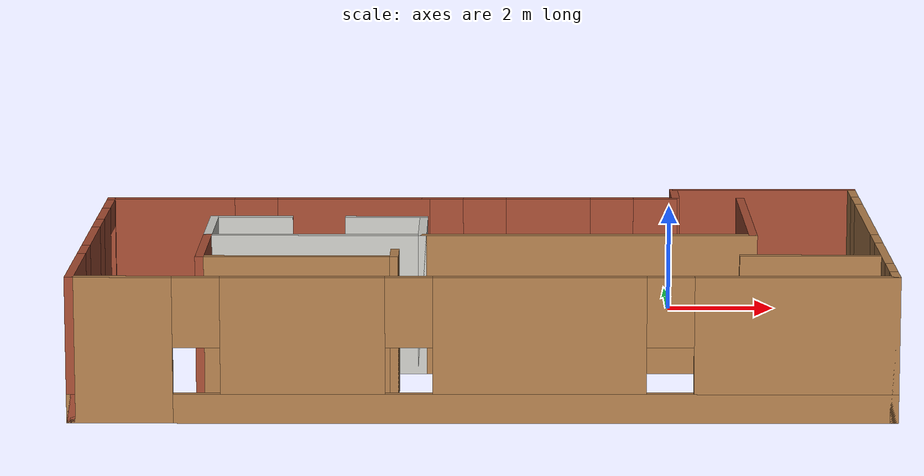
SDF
<?xml version='1.0'?>
<sdf version='1.7'>
  <model name='my_world'>
    <pose>-3.54648 -5.01067 0 0 -0 0</pose>
    <link name='Wall_1'>
      <collision name='Wall_1_Collision'>
        <geometry>
          <box>
            <size>4 0.15 2.5</size>
          </box>
        </geometry>
        <pose>0 0 1.25 0 -0 0</pose>
      </collision>
      <visual name='Wall_1_Visual'>
        <pose>0 0 1.25 0 -0 0</pose>
        <geometry>
          <box>
            <size>4 0.15 2.5</size>
          </box>
        </geometry>
        <material>
          <script>
            <uri>file://media/materials/scripts/gazebo.material</uri>
            <name>Gazebo/Bricks</name>
          </script>
          <ambient>1 1 1 1</ambient>
        </material>
        <meta>
          <layer>0</layer>
        </meta>
      </visual>
      <pose>4.775 0.989327 0 0 -0 -1.5708</pose>
    </link>
    <link name='Wall_10'>
      <collision name='Wall_10_Collision'>
        <geometry>
          <box>
            <size>3.5 0.15 2.5</size>
          </box>
        </geometry>
        <pose>0 0 1.25 0 -0 0</pose>
      </collision>
      <visual name='Wall_10_Visual'>
        <pose>0 0 1.25 0 -0 0</pose>
        <geometry>
          <box>
            <size>3.5 0.15 2.5</size>
          </box>
        </geometry>
        <material>
          <script>
            <uri>file://media/materials/scripts/gazebo.material</uri>
            <name>Gazebo/Bricks</name>
          </script>
          <ambient>1 1 1 1</ambient>
        </material>
        <meta>
          <layer>0</layer>
        </meta>
      </visual>
      <pose>5.25 3.91433 0 0 -0 3.14159</pose>
    </link>
    <link name='Wall_11'>
      <collision name='Wall_11_Collision'>
        <geometry>
          <box>
            <size>1 0.15 2.5</size>
          </box>
        </geometry>
        <pose>0 0 1.25 0 -0 0</pose>
      </collision>
      <visual name='Wall_11_Visual'>
        <pose>0 0 1.25 0 -0 0</pose>
        <geometry>
          <box>
            <size>1 0.15 2.5</size>
          </box>
        </geometry>
        <material>
          <script>
            <uri>file://media/materials/scripts/gazebo.material</uri>
            <name>Gazebo/Bricks</name>
          </script>
          <ambient>1 1 1 1</ambient>
        </material>
        <meta>
          <layer>0</layer>
        </meta>
      </visual>
      <pose>3.575 3.48933 0 0 -0 -1.5708</pose>
    </link>
    <link name='Wall_13'>
      <pose>1.225 2.91433 0 0 -0 0</pose>
      <visual name='Wall_13_Visual_0'>
        <pose>-1.98898 0 1.25 0 -0 0</pose>
        <geometry>
          <box>
            <size>0.772032 0.15 2.5</size>
          </box>
        </geometry>
        <material>
          <script>
            <uri>file://media/materials/scripts/gazebo.material</uri>
            <name>Gazebo/Bricks</name>
          </script>
          <ambient>1 1 1 1</ambient>
        </material>
        <meta>
          <layer>0</layer>
        </meta>
      </visual>
      <collision name='Wall_13_Collision_0'>
        <geometry>
          <box>
            <size>0.772032 0.15 2.5</size>
          </box>
        </geometry>
        <pose>-1.98898 0 1.25 0 -0 0</pose>
      </collision>
      <visual name='Wall_13_Visual_1'>
        <pose>0.386016 0 0.25 0 -0 0</pose>
        <geometry>
          <box>
            <size>3.97797 0.15 0.5</size>
          </box>
        </geometry>
        <material>
          <script>
            <uri>file://media/materials/scripts/gazebo.material</uri>
            <name>Gazebo/Bricks</name>
          </script>
          <ambient>1 1 1 1</ambient>
        </material>
        <meta>
          <layer>0</layer>
        </meta>
      </visual>
      <collision name='Wall_13_Collision_1'>
        <geometry>
          <box>
            <size>3.97797 0.15 0.5</size>
          </box>
        </geometry>
        <pose>0.386016 0 0.25 0 -0 0</pose>
      </collision>
      <visual name='Wall_13_Visual_2'>
        <pose>-0.022388 0 1.5 0 -0 0</pose>
        <geometry>
          <box>
            <size>1.56116 0.15 2</size>
          </box>
        </geometry>
        <material>
          <script>
            <uri>file://media/materials/scripts/gazebo.material</uri>
            <name>Gazebo/Bricks</name>
          </script>
          <ambient>1 1 1 1</ambient>
        </material>
        <meta>
          <layer>0</layer>
        </meta>
      </visual>
      <collision name='Wall_13_Collision_2'>
        <geometry>
          <box>
            <size>1.56116 0.15 2</size>
          </box>
        </geometry>
        <pose>-0.022388 0 1.5 0 -0 0</pose>
      </collision>
      <visual name='Wall_13_Visual_3'>
        <pose>1.9666 0 1.5 0 -0 0</pose>
        <geometry>
          <box>
            <size>0.816809 0.15 2</size>
          </box>
        </geometry>
        <material>
          <script>
            <uri>file://media/materials/scripts/gazebo.material</uri>
            <name>Gazebo/Bricks</name>
          </script>
          <ambient>1 1 1 1</ambient>
        </material>
        <meta>
          <layer>0</layer>
        </meta>
      </visual>
      <collision name='Wall_13_Collision_3'>
        <geometry>
          <box>
            <size>0.816809 0.15 2</size>
          </box>
        </geometry>
        <pose>1.9666 0 1.5 0 -0 0</pose>
      </collision>
      <visual name='Wall_13_Visual_4'>
        <pose>-1.20297 0 1.9 0 -0 0</pose>
        <geometry>
          <box>
            <size>0.8 0.15 1.2</size>
          </box>
        </geometry>
        <material>
          <script>
            <uri>file://media/materials/scripts/gazebo.material</uri>
            <name>Gazebo/Bricks</name>
          </script>
          <ambient>1 1 1 1</ambient>
        </material>
        <meta>
          <layer>0</layer>
        </meta>
      </visual>
      <collision name='Wall_13_Collision_4'>
        <geometry>
          <box>
            <size>0.8 0.15 1.2</size>
          </box>
        </geometry>
        <pose>-1.20297 0 1.9 0 -0 0</pose>
      </collision>
      <visual name='Wall_13_Visual_5'>
        <pose>1.15819 0 1.9 0 -0 0</pose>
        <geometry>
          <box>
            <size>0.8 0.15 1.2</size>
          </box>
        </geometry>
        <material>
          <script>
            <uri>file://media/materials/scripts/gazebo.material</uri>
            <name>Gazebo/Bricks</name>
          </script>
          <ambient>1 1 1 1</ambient>
        </material>
        <meta>
          <layer>0</layer>
        </meta>
      </visual>
      <collision name='Wall_13_Collision_5'>
        <geometry>
          <box>
            <size>0.8 0.15 1.2</size>
          </box>
        </geometry>
        <pose>1.15819 0 1.9 0 -0 0</pose>
      </collision>
    </link>
    <link name='Wall_15'>
      <collision name='Wall_15_Collision'>
        <geometry>
          <box>
            <size>1.5 0.15 2.5</size>
          </box>
        </geometry>
        <pose>0 0 1.25 0 -0 0</pose>
      </collision>
      <visual name='Wall_15_Visual'>
        <pose>0 0 1.25 0 -0 0</pose>
        <geometry>
          <box>
            <size>1.5 0.15 2.5</size>
          </box>
        </geometry>
        <material>
          <script>
            <uri>file://media/materials/scripts/gazebo.material</uri>
            <name>Gazebo/CeilingTiled</name>
          </script>
          <ambient>1 1 1 1</ambient>
        </material>
        <meta>
          <layer>0</layer>
        </meta>
      </visual>
      <pose>-1.75 0.914328 0 0 -0 3.14159</pose>
    </link>
    <link name='Wall_19'>
      <collision name='Wall_19_Collision'>
        <geometry>
          <box>
            <size>1.5 0.15 2.5</size>
          </box>
        </geometry>
        <pose>0 0 1.25 0 -0 0</pose>
      </collision>
      <visual name='Wall_19_Visual'>
        <pose>0 0 1.25 0 -0 0</pose>
        <geometry>
          <box>
            <size>1.5 0.15 2.5</size>
          </box>
        </geometry>
        <material>
          <script>
            <uri>file://media/materials/scripts/gazebo.material</uri>
            <name>Gazebo/CeilingTiled</name>
          </script>
          <ambient>1 1 1 1</ambient>
        </material>
        <meta>
          <layer>0</layer>
        </meta>
      </visual>
      <pose>-4.2 0.914328 0 0 -0 3.14159</pose>
    </link>
    <link name='Wall_2'>
      <collision name='Wall_2_Collision'>
        <geometry>
          <box>
            <size>6 0.15 2.5</size>
          </box>
        </geometry>
        <pose>0 0 1.25 0 -0 0</pose>
      </collision>
      <visual name='Wall_2_Visual'>
        <pose>0 0 1.25 0 -0 0</pose>
        <geometry>
          <box>
            <size>6 0.15 2.5</size>
          </box>
        </geometry>
        <material>
          <script>
            <uri>file://media/materials/scripts/gazebo.material</uri>
            <name>Gazebo/Wood</name>
          </script>
          <ambient>1 1 1 1</ambient>
        </material>
        <meta>
          <layer>0</layer>
        </meta>
      </visual>
      <pose>1.85 -0.935673 0 0 -0 3.14159</pose>
    </link>
    <link name='Wall_20'>
      <collision name='Wall_20_Collision'>
        <geometry>
          <box>
            <size>2 0.15 2.5</size>
          </box>
        </geometry>
        <pose>0 0 1.25 0 -0 0</pose>
      </collision>
      <visual name='Wall_20_Visual'>
        <pose>0 0 1.25 0 -0 0</pose>
        <geometry>
          <box>
            <size>2 0.15 2.5</size>
          </box>
        </geometry>
        <material>
          <script>
            <uri>file://media/materials/scripts/gazebo.material</uri>
            <name>Gazebo/CeilingTiled</name>
          </script>
          <ambient>1 1 1 1</ambient>
        </material>
        <meta>
          <layer>0</layer>
        </meta>
      </visual>
      <pose>-4.875 -0.010673 0 0 -0 -1.5708</pose>
    </link>
    <link name='Wall_21'>
      <collision name='Wall_21_Collision'>
        <geometry>
          <box>
            <size>3.95 0.15 2.5</size>
          </box>
        </geometry>
        <pose>0 0 1.25 0 -0 0</pose>
      </collision>
      <visual name='Wall_21_Visual'>
        <pose>0 0 1.25 0 -0 0</pose>
        <geometry>
          <box>
            <size>3.95 0.15 2.5</size>
          </box>
        </geometry>
        <material>
          <script>
            <uri>file://media/materials/scripts/gazebo.material</uri>
            <name>Gazebo/CeilingTiled</name>
          </script>
          <ambient>1 1 1 1</ambient>
        </material>
        <meta>
          <layer>0</layer>
        </meta>
      </visual>
      <pose>-2.975 -0.935673 0 0 -0 0</pose>
    </link>
    <link name='Wall_23'>
      <collision name='Wall_23_Collision'>
        <geometry>
          <box>
            <size>2.25 0.15 2.5</size>
          </box>
        </geometry>
        <pose>0 0 1.25 0 -0 0</pose>
      </collision>
      <visual name='Wall_23_Visual'>
        <pose>0 0 1.25 0 -0 0</pose>
        <geometry>
          <box>
            <size>2.25 0.15 2.5</size>
          </box>
        </geometry>
        <material>
          <script>
            <uri>file://media/materials/scripts/gazebo.material</uri>
            <name>Gazebo/Bricks</name>
          </script>
          <ambient>1 1 1 1</ambient>
        </material>
        <meta>
          <layer>0</layer>
        </meta>
      </visual>
      <pose>-4.875 -1.98567 0 0 -0 -1.5708</pose>
    </link>
    <link name='Wall_24'>
      <collision name='Wall_24_Collision'>
        <geometry>
          <box>
            <size>3.5 0.15 2.5</size>
          </box>
        </geometry>
        <pose>0 0 1.25 0 -0 0</pose>
      </collision>
      <visual name='Wall_24_Visual'>
        <pose>0 0 1.25 0 -0 0</pose>
        <geometry>
          <box>
            <size>3.5 0.15 2.5</size>
          </box>
        </geometry>
        <material>
          <script>
            <uri>file://media/materials/scripts/gazebo.material</uri>
            <name>Gazebo/Wood</name>
          </script>
          <ambient>1 1 1 1</ambient>
        </material>
        <meta>
          <layer>0</layer>
        </meta>
      </visual>
      <pose>-3.2 -3.03567 0 0 -0 0</pose>
    </link>
    <link name='Wall_25'>
      <collision name='Wall_25_Collision'>
        <geometry>
          <box>
            <size>0.75 0.15 2.5</size>
          </box>
        </geometry>
        <pose>0 0 1.25 0 -0 0</pose>
      </collision>
      <visual name='Wall_25_Visual'>
        <pose>0 0 1.25 0 -0 0</pose>
        <geometry>
          <box>
            <size>0.75 0.15 2.5</size>
          </box>
        </geometry>
        <material>
          <script>
            <uri>file://media/materials/scripts/gazebo.material</uri>
            <name>Gazebo/Wood</name>
          </script>
          <ambient>1 1 1 1</ambient>
        </material>
        <meta>
          <layer>0</layer>
        </meta>
      </visual>
      <pose>-1.525 -2.73567 0 0 -0 1.5708</pose>
    </link>
    <link name='Wall_27'>
      <collision name='Wall_27_Collision'>
        <geometry>
          <box>
            <size>2.5 0.15 2.5</size>
          </box>
        </geometry>
        <pose>0 0 1.25 0 -0 0</pose>
      </collision>
      <visual name='Wall_27_Visual'>
        <pose>0 0 1.25 0 -0 0</pose>
        <geometry>
          <box>
            <size>2.5 0.15 2.5</size>
          </box>
        </geometry>
        <material>
          <script>
            <uri>file://media/materials/scripts/gazebo.material</uri>
            <name>Gazebo/Wood</name>
          </script>
          <ambient>1 1 1 1</ambient>
        </material>
        <meta>
          <layer>0</layer>
        </meta>
      </visual>
      <pose>5.66796 -2.9586 0 0 -0 0</pose>
    </link>
    <link name='Wall_3'>
      <collision name='Wall_3_Collision'>
        <geometry>
          <box>
            <size>2 0.15 2.5</size>
          </box>
        </geometry>
        <pose>0 0 1.25 0 -0 0</pose>
      </collision>
      <visual name='Wall_3_Visual'>
        <pose>0 0 1.25 0 -0 0</pose>
        <geometry>
          <box>
            <size>2 0.15 2.5</size>
          </box>
        </geometry>
        <material>
          <script>
            <uri>file://media/materials/scripts/gazebo.material</uri>
            <name>Gazebo/CeilingTiled</name>
          </script>
          <ambient>1 1 1 1</ambient>
        </material>
        <meta>
          <layer>0</layer>
        </meta>
      </visual>
      <pose>-1.075 -0.010673 0 0 -0 1.5708</pose>
    </link>
    <link name='Wall_6'>
      <pose>-4 2.91433 0 0 -0 3.14159</pose>
      <visual name='Wall_6_Visual_0'>
        <pose>-1.58597 0 1.25 0 -0 0</pose>
        <geometry>
          <box>
            <size>2.82805 0.15 2.5</size>
          </box>
        </geometry>
        <material>
          <script>
            <uri>file://media/materials/scripts/gazebo.material</uri>
            <name>Gazebo/Bricks</name>
          </script>
          <ambient>1 1 1 1</ambient>
        </material>
        <meta>
          <layer>0</layer>
        </meta>
      </visual>
      <collision name='Wall_6_Collision_0'>
        <geometry>
          <box>
            <size>2.82805 0.15 2.5</size>
          </box>
        </geometry>
        <pose>-1.58597 0 1.25 0 -0 0</pose>
      </collision>
      <visual name='Wall_6_Visual_1'>
        <pose>1.41403 0 0.25 0 -0 0</pose>
        <geometry>
          <box>
            <size>3.17195 0.15 0.5</size>
          </box>
        </geometry>
        <material>
          <script>
            <uri>file://media/materials/scripts/gazebo.material</uri>
            <name>Gazebo/Bricks</name>
          </script>
          <ambient>1 1 1 1</ambient>
        </material>
        <meta>
          <layer>0</layer>
        </meta>
      </visual>
      <collision name='Wall_6_Collision_1'>
        <geometry>
          <box>
            <size>3.17195 0.15 0.5</size>
          </box>
        </geometry>
        <pose>1.41403 0 0.25 0 -0 0</pose>
      </collision>
      <visual name='Wall_6_Visual_2'>
        <pose>1.81403 0 1.5 0 -0 0</pose>
        <geometry>
          <box>
            <size>2.37195 0.15 2</size>
          </box>
        </geometry>
        <material>
          <script>
            <uri>file://media/materials/scripts/gazebo.material</uri>
            <name>Gazebo/Bricks</name>
          </script>
          <ambient>1 1 1 1</ambient>
        </material>
        <meta>
          <layer>0</layer>
        </meta>
      </visual>
      <collision name='Wall_6_Collision_2'>
        <geometry>
          <box>
            <size>2.37195 0.15 2</size>
          </box>
        </geometry>
        <pose>1.81403 0 1.5 0 -0 0</pose>
      </collision>
      <visual name='Wall_6_Visual_3'>
        <pose>0.228053 0 1.9 0 -0 0</pose>
        <geometry>
          <box>
            <size>0.8 0.15 1.2</size>
          </box>
        </geometry>
        <material>
          <script>
            <uri>file://media/materials/scripts/gazebo.material</uri>
            <name>Gazebo/Bricks</name>
          </script>
          <ambient>1 1 1 1</ambient>
        </material>
        <meta>
          <layer>0</layer>
        </meta>
      </visual>
      <collision name='Wall_6_Collision_3'>
        <geometry>
          <box>
            <size>0.8 0.15 1.2</size>
          </box>
        </geometry>
        <pose>0.228053 0 1.9 0 -0 0</pose>
      </collision>
    </link>
    <link name='Wall_7'>
      <pose>-6.925 -1.01067 0 0 -0 -1.5708</pose>
      <visual name='Wall_7_Visual_0'>
        <pose>-3.88155 0 1.25 0 -0 0</pose>
        <geometry>
          <box>
            <size>0.236903 0.15 2.5</size>
          </box>
        </geometry>
        <material>
          <script>
            <uri>file://media/materials/scripts/gazebo.material</uri>
            <name>Gazebo/Bricks</name>
          </script>
          <ambient>1 1 1 1</ambient>
        </material>
        <meta>
          <layer>0</layer>
        </meta>
      </visual>
      <collision name='Wall_7_Collision_0'>
        <geometry>
          <box>
            <size>0.236903 0.15 2.5</size>
          </box>
        </geometry>
        <pose>-3.88155 0 1.25 0 -0 0</pose>
      </collision>
      <visual name='Wall_7_Visual_1'>
        <pose>-2.26493 0 1.25 0 -0 0</pose>
        <geometry>
          <box>
            <size>1.19634 0.15 2.5</size>
          </box>
        </geometry>
        <material>
          <script>
            <uri>file://media/materials/scripts/gazebo.material</uri>
            <name>Gazebo/Bricks</name>
          </script>
          <ambient>1 1 1 1</ambient>
        </material>
        <meta>
          <layer>0</layer>
        </meta>
      </visual>
      <collision name='Wall_7_Collision_1'>
        <geometry>
          <box>
            <size>1.19634 0.15 2.5</size>
          </box>
        </geometry>
        <pose>-2.26493 0 1.25 0 -0 0</pose>
      </collision>
      <visual name='Wall_7_Visual_2'>
        <pose>1.16662 0 0.25 0 -0 0</pose>
        <geometry>
          <box>
            <size>5.66676 0.15 0.5</size>
          </box>
        </geometry>
        <material>
          <script>
            <uri>file://media/materials/scripts/gazebo.material</uri>
            <name>Gazebo/Bricks</name>
          </script>
          <ambient>1 1 1 1</ambient>
        </material>
        <meta>
          <layer>0</layer>
        </meta>
      </visual>
      <collision name='Wall_7_Collision_2'>
        <geometry>
          <box>
            <size>5.66676 0.15 0.5</size>
          </box>
        </geometry>
        <pose>1.16662 0 0.25 0 -0 0</pose>
      </collision>
      <visual name='Wall_7_Visual_3'>
        <pose>0.044995 0 1.5 0 -0 0</pose>
        <geometry>
          <box>
            <size>1.82351 0.15 2</size>
          </box>
        </geometry>
        <material>
          <script>
            <uri>file://media/materials/scripts/gazebo.material</uri>
            <name>Gazebo/Bricks</name>
          </script>
          <ambient>1 1 1 1</ambient>
        </material>
        <meta>
          <layer>0</layer>
        </meta>
      </visual>
      <collision name='Wall_7_Collision_3'>
        <geometry>
          <box>
            <size>1.82351 0.15 2</size>
          </box>
        </geometry>
        <pose>0.044995 0 1.5 0 -0 0</pose>
      </collision>
      <visual name='Wall_7_Visual_4'>
        <pose>2.87838 0 1.5 0 -0 0</pose>
        <geometry>
          <box>
            <size>2.24325 0.15 2</size>
          </box>
        </geometry>
        <material>
          <script>
            <uri>file://media/materials/scripts/gazebo.material</uri>
            <name>Gazebo/Bricks</name>
          </script>
          <ambient>1 1 1 1</ambient>
        </material>
        <meta>
          <layer>0</layer>
        </meta>
      </visual>
      <collision name='Wall_7_Collision_4'>
        <geometry>
          <box>
            <size>2.24325 0.15 2</size>
          </box>
        </geometry>
        <pose>2.87838 0 1.5 0 -0 0</pose>
      </collision>
      <visual name='Wall_7_Visual_5'>
        <pose>-1.26676 0 1.9 0 -0 0</pose>
        <geometry>
          <box>
            <size>0.8 0.15 1.2</size>
          </box>
        </geometry>
        <material>
          <script>
            <uri>file://media/materials/scripts/gazebo.material</uri>
            <name>Gazebo/Bricks</name>
          </script>
          <ambient>1 1 1 1</ambient>
        </material>
        <meta>
          <layer>0</layer>
        </meta>
      </visual>
      <collision name='Wall_7_Collision_5'>
        <geometry>
          <box>
            <size>0.8 0.15 1.2</size>
          </box>
        </geometry>
        <pose>-1.26676 0 1.9 0 -0 0</pose>
      </collision>
      <visual name='Wall_7_Visual_6'>
        <pose>1.35675 0 1.9 0 -0 0</pose>
        <geometry>
          <box>
            <size>0.8 0.15 1.2</size>
          </box>
        </geometry>
        <material>
          <script>
            <uri>file://media/materials/scripts/gazebo.material</uri>
            <name>Gazebo/Bricks</name>
          </script>
          <ambient>1 1 1 1</ambient>
        </material>
        <meta>
          <layer>0</layer>
        </meta>
      </visual>
      <collision name='Wall_7_Collision_6'>
        <geometry>
          <box>
            <size>0.8 0.15 1.2</size>
          </box>
        </geometry>
        <pose>1.35675 0 1.9 0 -0 0</pose>
      </collision>
      <visual name='Wall_7_Visual_7'>
        <pose>-3.3131 0 2.25 0 -0 0</pose>
        <geometry>
          <box>
            <size>0.9 0.15 0.5</size>
          </box>
        </geometry>
        <material>
          <script>
            <uri>file://media/materials/scripts/gazebo.material</uri>
            <name>Gazebo/Bricks</name>
          </script>
          <ambient>1 1 1 1</ambient>
        </material>
        <meta>
          <layer>0</layer>
        </meta>
      </visual>
      <collision name='Wall_7_Collision_7'>
        <geometry>
          <box>
            <size>0.9 0.15 0.5</size>
          </box>
        </geometry>
        <pose>-3.3131 0 2.25 0 -0 0</pose>
      </collision>
    </link>
    <link name='Wall_8'>
      <pose>0 -4.93567 0 0 -0 0</pose>
      <visual name='Wall_8_Visual_0'>
        <pose>-6.10261 0 1.25 0 -0 0</pose>
        <geometry>
          <box>
            <size>1.79478 0.15 2.5</size>
          </box>
        </geometry>
        <material>
          <script>
            <uri>file://media/materials/scripts/gazebo.material</uri>
            <name>Gazebo/Wood</name>
          </script>
          <ambient>1 1 1 1</ambient>
        </material>
        <meta>
          <layer>0</layer>
        </meta>
      </visual>
      <collision name='Wall_8_Collision_0'>
        <geometry>
          <box>
            <size>1.79478 0.15 2.5</size>
          </box>
        </geometry>
        <pose>-6.10261 0 1.25 0 -0 0</pose>
      </collision>
      <visual name='Wall_8_Visual_1'>
        <pose>0.897388 0 0.25 0 -0 0</pose>
        <geometry>
          <box>
            <size>12.2052 0.15 0.5</size>
          </box>
        </geometry>
        <material>
          <script>
            <uri>file://media/materials/scripts/gazebo.material</uri>
            <name>Gazebo/Wood</name>
          </script>
          <ambient>1 1 1 1</ambient>
        </material>
        <meta>
          <layer>0</layer>
        </meta>
      </visual>
      <collision name='Wall_8_Collision_1'>
        <geometry>
          <box>
            <size>12.2052 0.15 0.5</size>
          </box>
        </geometry>
        <pose>0.897388 0 0.25 0 -0 0</pose>
      </collision>
      <visual name='Wall_8_Visual_2'>
        <pose>-3.02124 0 1.5 0 -0 0</pose>
        <geometry>
          <box>
            <size>2.76797 0.15 2</size>
          </box>
        </geometry>
        <material>
          <script>
            <uri>file://media/materials/scripts/gazebo.material</uri>
            <name>Gazebo/Wood</name>
          </script>
          <ambient>1 1 1 1</ambient>
        </material>
        <meta>
          <layer>0</layer>
        </meta>
      </visual>
      <collision name='Wall_8_Collision_2'>
        <geometry>
          <box>
            <size>2.76797 0.15 2</size>
          </box>
        </geometry>
        <pose>-3.02124 0 1.5 0 -0 0</pose>
      </collision>
      <visual name='Wall_8_Visual_3'>
        <pose>0.957751 0 1.5 0 -0 0</pose>
        <geometry>
          <box>
            <size>3.59001 0.15 2</size>
          </box>
        </geometry>
        <material>
          <script>
            <uri>file://media/materials/scripts/gazebo.material</uri>
            <name>Gazebo/Wood</name>
          </script>
          <ambient>1 1 1 1</ambient>
        </material>
        <meta>
          <layer>0</layer>
        </meta>
      </visual>
      <collision name='Wall_8_Collision_3'>
        <geometry>
          <box>
            <size>3.59001 0.15 2</size>
          </box>
        </geometry>
        <pose>0.957751 0 1.5 0 -0 0</pose>
      </collision>
      <visual name='Wall_8_Visual_4'>
        <pose>5.27638 0 1.5 0 -0 0</pose>
        <geometry>
          <box>
            <size>3.44725 0.15 2</size>
          </box>
        </geometry>
        <material>
          <script>
            <uri>file://media/materials/scripts/gazebo.material</uri>
            <name>Gazebo/Wood</name>
          </script>
          <ambient>1 1 1 1</ambient>
        </material>
        <meta>
          <layer>0</layer>
        </meta>
      </visual>
      <collision name='Wall_8_Collision_4'>
        <geometry>
          <box>
            <size>3.44725 0.15 2</size>
          </box>
        </geometry>
        <pose>5.27638 0 1.5 0 -0 0</pose>
      </collision>
      <visual name='Wall_8_Visual_5'>
        <pose>-4.80523 0 1.9 0 -0 0</pose>
        <geometry>
          <box>
            <size>0.8 0.15 1.2</size>
          </box>
        </geometry>
        <material>
          <script>
            <uri>file://media/materials/scripts/gazebo.material</uri>
            <name>Gazebo/Wood</name>
          </script>
          <ambient>1 1 1 1</ambient>
        </material>
        <meta>
          <layer>0</layer>
        </meta>
      </visual>
      <collision name='Wall_8_Collision_5'>
        <geometry>
          <box>
            <size>0.8 0.15 1.2</size>
          </box>
        </geometry>
        <pose>-4.80523 0 1.9 0 -0 0</pose>
      </collision>
      <visual name='Wall_8_Visual_6'>
        <pose>-1.23725 0 1.9 0 -0 0</pose>
        <geometry>
          <box>
            <size>0.8 0.15 1.2</size>
          </box>
        </geometry>
        <material>
          <script>
            <uri>file://media/materials/scripts/gazebo.material</uri>
            <name>Gazebo/Wood</name>
          </script>
          <ambient>1 1 1 1</ambient>
        </material>
        <meta>
          <layer>0</layer>
        </meta>
      </visual>
      <collision name='Wall_8_Collision_6'>
        <geometry>
          <box>
            <size>0.8 0.15 1.2</size>
          </box>
        </geometry>
        <pose>-1.23725 0 1.9 0 -0 0</pose>
      </collision>
      <visual name='Wall_8_Visual_7'>
        <pose>3.15275 0 1.9 0 -0 0</pose>
        <geometry>
          <box>
            <size>0.8 0.15 1.2</size>
          </box>
        </geometry>
        <material>
          <script>
            <uri>file://media/materials/scripts/gazebo.material</uri>
            <name>Gazebo/Wood</name>
          </script>
          <ambient>1 1 1 1</ambient>
        </material>
        <meta>
          <layer>0</layer>
        </meta>
      </visual>
      <collision name='Wall_8_Collision_7'>
        <geometry>
          <box>
            <size>0.8 0.15 1.2</size>
          </box>
        </geometry>
        <pose>3.15275 0 1.9 0 -0 0</pose>
      </collision>
    </link>
    <link name='Wall_9'>
      <pose>6.925 -0.510673 0 0 -0 1.5708</pose>
      <visual name='Wall_9_Visual_0'>
        <pose>-4.22664 0 1.25 0 -0 0</pose>
        <geometry>
          <box>
            <size>0.546715 0.15 2.5</size>
          </box>
        </geometry>
        <material>
          <script>
            <uri>file://media/materials/scripts/gazebo.material</uri>
            <name>Gazebo/Wood</name>
          </script>
          <ambient>1 1 1 1</ambient>
        </material>
        <meta>
          <layer>0</layer>
        </meta>
      </visual>
      <collision name='Wall_9_Collision_0'>
        <geometry>
          <box>
            <size>0.546715 0.15 2.5</size>
          </box>
        </geometry>
        <pose>-4.22664 0 1.25 0 -0 0</pose>
      </collision>
      <visual name='Wall_9_Visual_1'>
        <pose>0.273357 0 0.25 0 -0 0</pose>
        <geometry>
          <box>
            <size>8.45328 0.15 0.5</size>
          </box>
        </geometry>
        <material>
          <script>
            <uri>file://media/materials/scripts/gazebo.material</uri>
            <name>Gazebo/Wood</name>
          </script>
          <ambient>1 1 1 1</ambient>
        </material>
        <meta>
          <layer>0</layer>
        </meta>
      </visual>
      <collision name='Wall_9_Collision_1'>
        <geometry>
          <box>
            <size>8.45328 0.15 0.5</size>
          </box>
        </geometry>
        <pose>0.273357 0 0.25 0 -0 0</pose>
      </collision>
      <visual name='Wall_9_Visual_2'>
        <pose>-2.18031 0 1.5 0 -0 0</pose>
        <geometry>
          <box>
            <size>1.94594 0.15 2</size>
          </box>
        </geometry>
        <material>
          <script>
            <uri>file://media/materials/scripts/gazebo.material</uri>
            <name>Gazebo/Wood</name>
          </script>
          <ambient>1 1 1 1</ambient>
        </material>
        <meta>
          <layer>0</layer>
        </meta>
      </visual>
      <collision name='Wall_9_Collision_2'>
        <geometry>
          <box>
            <size>1.94594 0.15 2</size>
          </box>
        </geometry>
        <pose>-2.18031 0 1.5 0 -0 0</pose>
      </collision>
      <visual name='Wall_9_Visual_3'>
        <pose>1.18652 0 1.5 0 -0 0</pose>
        <geometry>
          <box>
            <size>3.18773 0.15 2</size>
          </box>
        </geometry>
        <material>
          <script>
            <uri>file://media/materials/scripts/gazebo.material</uri>
            <name>Gazebo/Wood</name>
          </script>
          <ambient>1 1 1 1</ambient>
        </material>
        <meta>
          <layer>0</layer>
        </meta>
      </visual>
      <collision name='Wall_9_Collision_3'>
        <geometry>
          <box>
            <size>3.18773 0.15 2</size>
          </box>
        </geometry>
        <pose>1.18652 0 1.5 0 -0 0</pose>
      </collision>
      <visual name='Wall_9_Visual_4'>
        <pose>4.04019 0 1.5 0 -0 0</pose>
        <geometry>
          <box>
            <size>0.919612 0.15 2</size>
          </box>
        </geometry>
        <material>
          <script>
            <uri>file://media/materials/scripts/gazebo.material</uri>
            <name>Gazebo/Wood</name>
          </script>
          <ambient>1 1 1 1</ambient>
        </material>
        <meta>
          <layer>0</layer>
        </meta>
      </visual>
      <collision name='Wall_9_Collision_4'>
        <geometry>
          <box>
            <size>0.919612 0.15 2</size>
          </box>
        </geometry>
        <pose>4.04019 0 1.5 0 -0 0</pose>
      </collision>
      <visual name='Wall_9_Visual_5'>
        <pose>-3.55328 0 1.9 0 -0 0</pose>
        <geometry>
          <box>
            <size>0.8 0.15 1.2</size>
          </box>
        </geometry>
        <material>
          <script>
            <uri>file://media/materials/scripts/gazebo.material</uri>
            <name>Gazebo/Wood</name>
          </script>
          <ambient>1 1 1 1</ambient>
        </material>
        <meta>
          <layer>0</layer>
        </meta>
      </visual>
      <collision name='Wall_9_Collision_5'>
        <geometry>
          <box>
            <size>0.8 0.15 1.2</size>
          </box>
        </geometry>
        <pose>-3.55328 0 1.9 0 -0 0</pose>
      </collision>
      <visual name='Wall_9_Visual_6'>
        <pose>-0.807346 0 1.9 0 -0 0</pose>
        <geometry>
          <box>
            <size>0.8 0.15 1.2</size>
          </box>
        </geometry>
        <material>
          <script>
            <uri>file://media/materials/scripts/gazebo.material</uri>
            <name>Gazebo/Wood</name>
          </script>
          <ambient>1 1 1 1</ambient>
        </material>
        <meta>
          <layer>0</layer>
        </meta>
      </visual>
      <collision name='Wall_9_Collision_6'>
        <geometry>
          <box>
            <size>0.8 0.15 1.2</size>
          </box>
        </geometry>
        <pose>-0.807346 0 1.9 0 -0 0</pose>
      </collision>
      <visual name='Wall_9_Visual_7'>
        <pose>3.18039 0 1.9 0 -0 0</pose>
        <geometry>
          <box>
            <size>0.8 0.15 1.2</size>
          </box>
        </geometry>
        <material>
          <script>
            <uri>file://media/materials/scripts/gazebo.material</uri>
            <name>Gazebo/Wood</name>
          </script>
          <ambient>1 1 1 1</ambient>
        </material>
        <meta>
          <layer>0</layer>
        </meta>
      </visual>
      <collision name='Wall_9_Collision_7'>
        <geometry>
          <box>
            <size>0.8 0.15 1.2</size>
          </box>
        </geometry>
        <pose>3.18039 0 1.9 0 -0 0</pose>
      </collision>
    </link>
    <static>1</static>
  </model>
</sdf>
